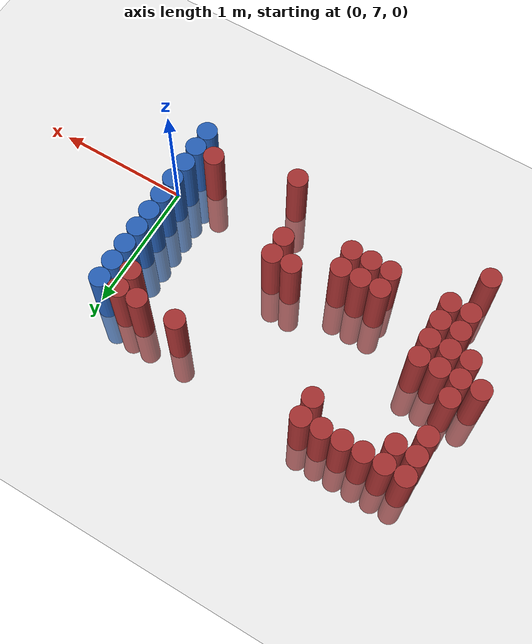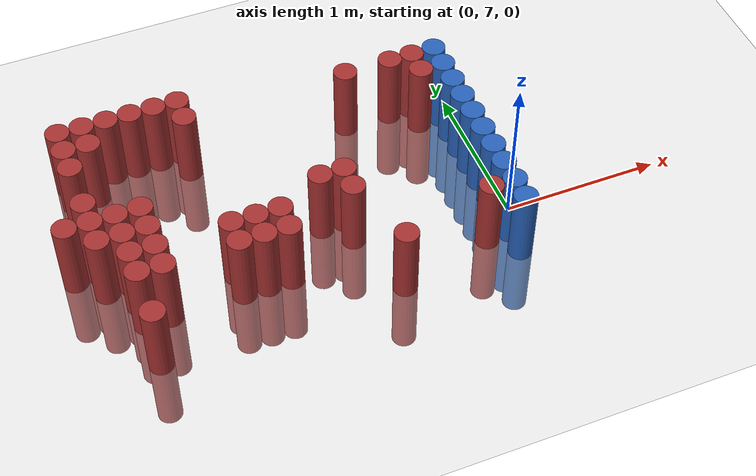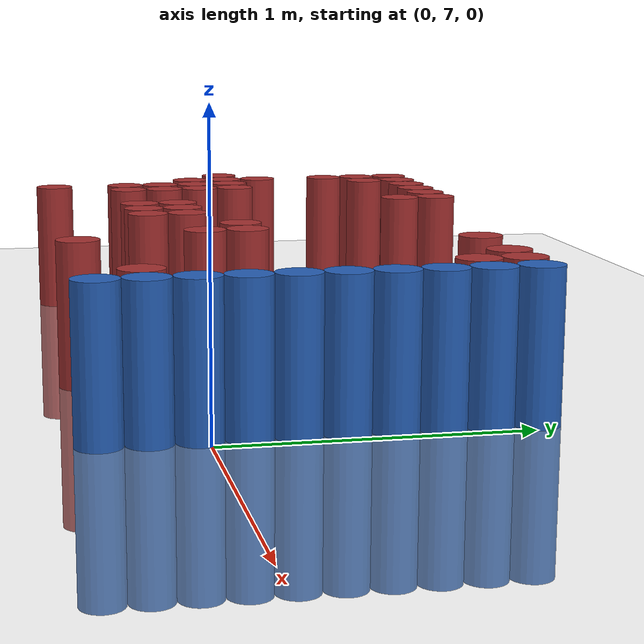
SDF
<sdf version="1.6">
 <world name="default">
  <model name="ground_plane">
   <static>1</static>
   <link name="link">
    <collision name="collision">
     <geometry><plane><normal>0 0 1</normal><size>100 100</size></plane></geometry>
     <surface><friction><ode><mu>100</mu><mu2>50</mu2></ode></friction></surface>
    </collision>
    <visual name="visual">
     <cast_shadows>0</cast_shadows>
     <geometry><plane><normal>0 0 1</normal><size>100 100</size></plane></geometry>
     <material>
      <script><uri>file://media/materials/scripts/gazebo.material</uri><name>Gazebo/Grey</name></script>
     </material>
    </visual>
   </link>
  </model>
  <model name="unit_cylinder_169">
   <static>1</static>
   <pose>-2.625000 7.425000 0.000000 0.000000 0.000000 0.000000</pose>
   <link name="link">
    <inertial>
     <mass>1</mass>
     <inertia><ixx>0.145833</ixx><ixy>0</ixy><ixz>0</ixz><iyy>0.145833</iyy><iyz>0</iyz><izz>0.125</izz></inertia>
    </inertial>
    <collision name="collision">
     <geometry><cylinder><radius>0.075000</radius><length>1</length></cylinder></geometry>
    </collision>
    <visual name="visual">
     <geometry><cylinder><radius>0.075000</radius><length>1</length></cylinder></geometry>
     <material>
      <ambient>0.648000 0.192000 0.192000 1</ambient>
      <diffuse>0.648000 0.192000 0.192000 1</diffuse>
     </material>
     <material>
      <script><name>Gazebo/Grey</name><uri>file://media/materials/scripts/gazebo.material</uri></script>
     </material>
    </visual>
   </link>
  </model>
  <model name="unit_cylinder_170">
   <static>1</static>
   <pose>-2.475000 7.275000 0.000000 0.000000 0.000000 0.000000</pose>
   <link name="link">
    <inertial>
     <mass>1</mass>
     <inertia><ixx>0.145833</ixx><ixy>0</ixy><ixz>0</ixz><iyy>0.145833</iyy><iyz>0</iyz><izz>0.125</izz></inertia>
    </inertial>
    <collision name="collision">
     <geometry><cylinder><radius>0.075000</radius><length>1</length></cylinder></geometry>
    </collision>
    <visual name="visual">
     <geometry><cylinder><radius>0.075000</radius><length>1</length></cylinder></geometry>
     <material>
      <ambient>0.648000 0.192000 0.192000 1</ambient>
      <diffuse>0.648000 0.192000 0.192000 1</diffuse>
     </material>
     <material>
      <script><name>Gazebo/Grey</name><uri>file://media/materials/scripts/gazebo.material</uri></script>
     </material>
    </visual>
   </link>
  </model>
  <model name="unit_cylinder_171">
   <static>1</static>
   <pose>-2.475000 7.425000 0.000000 0.000000 0.000000 0.000000</pose>
   <link name="link">
    <inertial>
     <mass>1</mass>
     <inertia><ixx>0.145833</ixx><ixy>0</ixy><ixz>0</ixz><iyy>0.145833</iyy><iyz>0</iyz><izz>0.125</izz></inertia>
    </inertial>
    <collision name="collision">
     <geometry><cylinder><radius>0.075000</radius><length>1</length></cylinder></geometry>
    </collision>
    <visual name="visual">
     <geometry><cylinder><radius>0.075000</radius><length>1</length></cylinder></geometry>
     <material>
      <ambient>0.648000 0.192000 0.192000 1</ambient>
      <diffuse>0.648000 0.192000 0.192000 1</diffuse>
     </material>
     <material>
      <script><name>Gazebo/Grey</name><uri>file://media/materials/scripts/gazebo.material</uri></script>
     </material>
    </visual>
   </link>
  </model>
  <model name="unit_cylinder_172">
   <static>1</static>
   <pose>-2.475000 7.575000 0.000000 0.000000 0.000000 0.000000</pose>
   <link name="link">
    <inertial>
     <mass>1</mass>
     <inertia><ixx>0.145833</ixx><ixy>0</ixy><ixz>0</ixz><iyy>0.145833</iyy><iyz>0</iyz><izz>0.125</izz></inertia>
    </inertial>
    <collision name="collision">
     <geometry><cylinder><radius>0.075000</radius><length>1</length></cylinder></geometry>
    </collision>
    <visual name="visual">
     <geometry><cylinder><radius>0.075000</radius><length>1</length></cylinder></geometry>
     <material>
      <ambient>0.648000 0.192000 0.192000 1</ambient>
      <diffuse>0.648000 0.192000 0.192000 1</diffuse>
     </material>
     <material>
      <script><name>Gazebo/Grey</name><uri>file://media/materials/scripts/gazebo.material</uri></script>
     </material>
    </visual>
   </link>
  </model>
  <model name="unit_cylinder_173">
   <static>1</static>
   <pose>-2.475000 7.875000 0.000000 0.000000 0.000000 0.000000</pose>
   <link name="link">
    <inertial>
     <mass>1</mass>
     <inertia><ixx>0.145833</ixx><ixy>0</ixy><ixz>0</ixz><iyy>0.145833</iyy><iyz>0</iyz><izz>0.125</izz></inertia>
    </inertial>
    <collision name="collision">
     <geometry><cylinder><radius>0.075000</radius><length>1</length></cylinder></geometry>
    </collision>
    <visual name="visual">
     <geometry><cylinder><radius>0.075000</radius><length>1</length></cylinder></geometry>
     <material>
      <ambient>0.648000 0.192000 0.192000 1</ambient>
      <diffuse>0.648000 0.192000 0.192000 1</diffuse>
     </material>
     <material>
      <script><name>Gazebo/Grey</name><uri>file://media/materials/scripts/gazebo.material</uri></script>
     </material>
    </visual>
   </link>
  </model>
  <model name="unit_cylinder_174">
   <static>1</static>
   <pose>-2.475000 8.025000 0.000000 0.000000 0.000000 0.000000</pose>
   <link name="link">
    <inertial>
     <mass>1</mass>
     <inertia><ixx>0.145833</ixx><ixy>0</ixy><ixz>0</ixz><iyy>0.145833</iyy><iyz>0</iyz><izz>0.125</izz></inertia>
    </inertial>
    <collision name="collision">
     <geometry><cylinder><radius>0.075000</radius><length>1</length></cylinder></geometry>
    </collision>
    <visual name="visual">
     <geometry><cylinder><radius>0.075000</radius><length>1</length></cylinder></geometry>
     <material>
      <ambient>0.648000 0.192000 0.192000 1</ambient>
      <diffuse>0.648000 0.192000 0.192000 1</diffuse>
     </material>
     <material>
      <script><name>Gazebo/Grey</name><uri>file://media/materials/scripts/gazebo.material</uri></script>
     </material>
    </visual>
   </link>
  </model>
  <model name="unit_cylinder_175">
   <static>1</static>
   <pose>-2.475000 8.175000 0.000000 0.000000 0.000000 0.000000</pose>
   <link name="link">
    <inertial>
     <mass>1</mass>
     <inertia><ixx>0.145833</ixx><ixy>0</ixy><ixz>0</ixz><iyy>0.145833</iyy><iyz>0</iyz><izz>0.125</izz></inertia>
    </inertial>
    <collision name="collision">
     <geometry><cylinder><radius>0.075000</radius><length>1</length></cylinder></geometry>
    </collision>
    <visual name="visual">
     <geometry><cylinder><radius>0.075000</radius><length>1</length></cylinder></geometry>
     <material>
      <ambient>0.648000 0.192000 0.192000 1</ambient>
      <diffuse>0.648000 0.192000 0.192000 1</diffuse>
     </material>
     <material>
      <script><name>Gazebo/Grey</name><uri>file://media/materials/scripts/gazebo.material</uri></script>
     </material>
    </visual>
   </link>
  </model>
  <model name="unit_cylinder_178">
   <static>1</static>
   <pose>-2.325000 6.675000 0.000000 0.000000 0.000000 0.000000</pose>
   <link name="link">
    <inertial>
     <mass>1</mass>
     <inertia><ixx>0.145833</ixx><ixy>0</ixy><ixz>0</ixz><iyy>0.145833</iyy><iyz>0</iyz><izz>0.125</izz></inertia>
    </inertial>
    <collision name="collision">
     <geometry><cylinder><radius>0.075000</radius><length>1</length></cylinder></geometry>
    </collision>
    <visual name="visual">
     <geometry><cylinder><radius>0.075000</radius><length>1</length></cylinder></geometry>
     <material>
      <ambient>0.648000 0.192000 0.192000 1</ambient>
      <diffuse>0.648000 0.192000 0.192000 1</diffuse>
     </material>
     <material>
      <script><name>Gazebo/Grey</name><uri>file://media/materials/scripts/gazebo.material</uri></script>
     </material>
    </visual>
   </link>
  </model>
  <model name="unit_cylinder_179">
   <static>1</static>
   <pose>-2.325000 6.975000 0.000000 0.000000 0.000000 0.000000</pose>
   <link name="link">
    <inertial>
     <mass>1</mass>
     <inertia><ixx>0.145833</ixx><ixy>0</ixy><ixz>0</ixz><iyy>0.145833</iyy><iyz>0</iyz><izz>0.125</izz></inertia>
    </inertial>
    <collision name="collision">
     <geometry><cylinder><radius>0.075000</radius><length>1</length></cylinder></geometry>
    </collision>
    <visual name="visual">
     <geometry><cylinder><radius>0.075000</radius><length>1</length></cylinder></geometry>
     <material>
      <ambient>0.648000 0.192000 0.192000 1</ambient>
      <diffuse>0.648000 0.192000 0.192000 1</diffuse>
     </material>
     <material>
      <script><name>Gazebo/Grey</name><uri>file://media/materials/scripts/gazebo.material</uri></script>
     </material>
    </visual>
   </link>
  </model>
  <model name="unit_cylinder_180">
   <static>1</static>
   <pose>-2.325000 7.125000 0.000000 0.000000 0.000000 0.000000</pose>
   <link name="link">
    <inertial>
     <mass>1</mass>
     <inertia><ixx>0.145833</ixx><ixy>0</ixy><ixz>0</ixz><iyy>0.145833</iyy><iyz>0</iyz><izz>0.125</izz></inertia>
    </inertial>
    <collision name="collision">
     <geometry><cylinder><radius>0.075000</radius><length>1</length></cylinder></geometry>
    </collision>
    <visual name="visual">
     <geometry><cylinder><radius>0.075000</radius><length>1</length></cylinder></geometry>
     <material>
      <ambient>0.648000 0.192000 0.192000 1</ambient>
      <diffuse>0.648000 0.192000 0.192000 1</diffuse>
     </material>
     <material>
      <script><name>Gazebo/Grey</name><uri>file://media/materials/scripts/gazebo.material</uri></script>
     </material>
    </visual>
   </link>
  </model>
  <model name="unit_cylinder_181">
   <static>1</static>
   <pose>-2.325000 7.275000 0.000000 0.000000 0.000000 0.000000</pose>
   <link name="link">
    <inertial>
     <mass>1</mass>
     <inertia><ixx>0.145833</ixx><ixy>0</ixy><ixz>0</ixz><iyy>0.145833</iyy><iyz>0</iyz><izz>0.125</izz></inertia>
    </inertial>
    <collision name="collision">
     <geometry><cylinder><radius>0.075000</radius><length>1</length></cylinder></geometry>
    </collision>
    <visual name="visual">
     <geometry><cylinder><radius>0.075000</radius><length>1</length></cylinder></geometry>
     <material>
      <ambient>0.648000 0.192000 0.192000 1</ambient>
      <diffuse>0.648000 0.192000 0.192000 1</diffuse>
     </material>
     <material>
      <script><name>Gazebo/Grey</name><uri>file://media/materials/scripts/gazebo.material</uri></script>
     </material>
    </visual>
   </link>
  </model>
  <model name="unit_cylinder_182">
   <static>1</static>
   <pose>-2.325000 7.425000 0.000000 0.000000 0.000000 0.000000</pose>
   <link name="link">
    <inertial>
     <mass>1</mass>
     <inertia><ixx>0.145833</ixx><ixy>0</ixy><ixz>0</ixz><iyy>0.145833</iyy><iyz>0</iyz><izz>0.125</izz></inertia>
    </inertial>
    <collision name="collision">
     <geometry><cylinder><radius>0.075000</radius><length>1</length></cylinder></geometry>
    </collision>
    <visual name="visual">
     <geometry><cylinder><radius>0.075000</radius><length>1</length></cylinder></geometry>
     <material>
      <ambient>0.648000 0.192000 0.192000 1</ambient>
      <diffuse>0.648000 0.192000 0.192000 1</diffuse>
     </material>
     <material>
      <script><name>Gazebo/Grey</name><uri>file://media/materials/scripts/gazebo.material</uri></script>
     </material>
    </visual>
   </link>
  </model>
  <model name="unit_cylinder_183">
   <static>1</static>
   <pose>-2.325000 8.025000 0.000000 0.000000 0.000000 0.000000</pose>
   <link name="link">
    <inertial>
     <mass>1</mass>
     <inertia><ixx>0.145833</ixx><ixy>0</ixy><ixz>0</ixz><iyy>0.145833</iyy><iyz>0</iyz><izz>0.125</izz></inertia>
    </inertial>
    <collision name="collision">
     <geometry><cylinder><radius>0.075000</radius><length>1</length></cylinder></geometry>
    </collision>
    <visual name="visual">
     <geometry><cylinder><radius>0.075000</radius><length>1</length></cylinder></geometry>
     <material>
      <ambient>0.648000 0.192000 0.192000 1</ambient>
      <diffuse>0.648000 0.192000 0.192000 1</diffuse>
     </material>
     <material>
      <script><name>Gazebo/Grey</name><uri>file://media/materials/scripts/gazebo.material</uri></script>
     </material>
    </visual>
   </link>
  </model>
  <model name="unit_cylinder_184">
   <static>1</static>
   <pose>-2.325000 8.175000 0.000000 0.000000 0.000000 0.000000</pose>
   <link name="link">
    <inertial>
     <mass>1</mass>
     <inertia><ixx>0.145833</ixx><ixy>0</ixy><ixz>0</ixz><iyy>0.145833</iyy><iyz>0</iyz><izz>0.125</izz></inertia>
    </inertial>
    <collision name="collision">
     <geometry><cylinder><radius>0.075000</radius><length>1</length></cylinder></geometry>
    </collision>
    <visual name="visual">
     <geometry><cylinder><radius>0.075000</radius><length>1</length></cylinder></geometry>
     <material>
      <ambient>0.648000 0.192000 0.192000 1</ambient>
      <diffuse>0.648000 0.192000 0.192000 1</diffuse>
     </material>
     <material>
      <script><name>Gazebo/Grey</name><uri>file://media/materials/scripts/gazebo.material</uri></script>
     </material>
    </visual>
   </link>
  </model>
  <model name="unit_cylinder_189">
   <static>1</static>
   <pose>-2.175000 6.975000 0.000000 0.000000 0.000000 0.000000</pose>
   <link name="link">
    <inertial>
     <mass>1</mass>
     <inertia><ixx>0.145833</ixx><ixy>0</ixy><ixz>0</ixz><iyy>0.145833</iyy><iyz>0</iyz><izz>0.125</izz></inertia>
    </inertial>
    <collision name="collision">
     <geometry><cylinder><radius>0.075000</radius><length>1</length></cylinder></geometry>
    </collision>
    <visual name="visual">
     <geometry><cylinder><radius>0.075000</radius><length>1</length></cylinder></geometry>
     <material>
      <ambient>0.648000 0.192000 0.192000 1</ambient>
      <diffuse>0.648000 0.192000 0.192000 1</diffuse>
     </material>
     <material>
      <script><name>Gazebo/Grey</name><uri>file://media/materials/scripts/gazebo.material</uri></script>
     </material>
    </visual>
   </link>
  </model>
  <model name="unit_cylinder_190">
   <static>1</static>
   <pose>-2.175000 7.125000 0.000000 0.000000 0.000000 0.000000</pose>
   <link name="link">
    <inertial>
     <mass>1</mass>
     <inertia><ixx>0.145833</ixx><ixy>0</ixy><ixz>0</ixz><iyy>0.145833</iyy><iyz>0</iyz><izz>0.125</izz></inertia>
    </inertial>
    <collision name="collision">
     <geometry><cylinder><radius>0.075000</radius><length>1</length></cylinder></geometry>
    </collision>
    <visual name="visual">
     <geometry><cylinder><radius>0.075000</radius><length>1</length></cylinder></geometry>
     <material>
      <ambient>0.648000 0.192000 0.192000 1</ambient>
      <diffuse>0.648000 0.192000 0.192000 1</diffuse>
     </material>
     <material>
      <script><name>Gazebo/Grey</name><uri>file://media/materials/scripts/gazebo.material</uri></script>
     </material>
    </visual>
   </link>
  </model>
  <model name="unit_cylinder_191">
   <static>1</static>
   <pose>-2.175000 7.275000 0.000000 0.000000 0.000000 0.000000</pose>
   <link name="link">
    <inertial>
     <mass>1</mass>
     <inertia><ixx>0.145833</ixx><ixy>0</ixy><ixz>0</ixz><iyy>0.145833</iyy><iyz>0</iyz><izz>0.125</izz></inertia>
    </inertial>
    <collision name="collision">
     <geometry><cylinder><radius>0.075000</radius><length>1</length></cylinder></geometry>
    </collision>
    <visual name="visual">
     <geometry><cylinder><radius>0.075000</radius><length>1</length></cylinder></geometry>
     <material>
      <ambient>0.648000 0.192000 0.192000 1</ambient>
      <diffuse>0.648000 0.192000 0.192000 1</diffuse>
     </material>
     <material>
      <script><name>Gazebo/Grey</name><uri>file://media/materials/scripts/gazebo.material</uri></script>
     </material>
    </visual>
   </link>
  </model>
  <model name="unit_cylinder_192">
   <static>1</static>
   <pose>-2.175000 7.425000 0.000000 0.000000 0.000000 0.000000</pose>
   <link name="link">
    <inertial>
     <mass>1</mass>
     <inertia><ixx>0.145833</ixx><ixy>0</ixy><ixz>0</ixz><iyy>0.145833</iyy><iyz>0</iyz><izz>0.125</izz></inertia>
    </inertial>
    <collision name="collision">
     <geometry><cylinder><radius>0.075000</radius><length>1</length></cylinder></geometry>
    </collision>
    <visual name="visual">
     <geometry><cylinder><radius>0.075000</radius><length>1</length></cylinder></geometry>
     <material>
      <ambient>0.648000 0.192000 0.192000 1</ambient>
      <diffuse>0.648000 0.192000 0.192000 1</diffuse>
     </material>
     <material>
      <script><name>Gazebo/Grey</name><uri>file://media/materials/scripts/gazebo.material</uri></script>
     </material>
    </visual>
   </link>
  </model>
  <model name="unit_cylinder_193">
   <static>1</static>
   <pose>-2.175000 8.175000 0.000000 0.000000 0.000000 0.000000</pose>
   <link name="link">
    <inertial>
     <mass>1</mass>
     <inertia><ixx>0.145833</ixx><ixy>0</ixy><ixz>0</ixz><iyy>0.145833</iyy><iyz>0</iyz><izz>0.125</izz></inertia>
    </inertial>
    <collision name="collision">
     <geometry><cylinder><radius>0.075000</radius><length>1</length></cylinder></geometry>
    </collision>
    <visual name="visual">
     <geometry><cylinder><radius>0.075000</radius><length>1</length></cylinder></geometry>
     <material>
      <ambient>0.648000 0.192000 0.192000 1</ambient>
      <diffuse>0.648000 0.192000 0.192000 1</diffuse>
     </material>
     <material>
      <script><name>Gazebo/Grey</name><uri>file://media/materials/scripts/gazebo.material</uri></script>
     </material>
    </visual>
   </link>
  </model>
  <model name="unit_cylinder_198">
   <static>1</static>
   <pose>-2.025000 8.175000 0.000000 0.000000 0.000000 0.000000</pose>
   <link name="link">
    <inertial>
     <mass>1</mass>
     <inertia><ixx>0.145833</ixx><ixy>0</ixy><ixz>0</ixz><iyy>0.145833</iyy><iyz>0</iyz><izz>0.125</izz></inertia>
    </inertial>
    <collision name="collision">
     <geometry><cylinder><radius>0.075000</radius><length>1</length></cylinder></geometry>
    </collision>
    <visual name="visual">
     <geometry><cylinder><radius>0.075000</radius><length>1</length></cylinder></geometry>
     <material>
      <ambient>0.648000 0.192000 0.192000 1</ambient>
      <diffuse>0.648000 0.192000 0.192000 1</diffuse>
     </material>
     <material>
      <script><name>Gazebo/Grey</name><uri>file://media/materials/scripts/gazebo.material</uri></script>
     </material>
    </visual>
   </link>
  </model>
  <model name="unit_cylinder_200">
   <static>1</static>
   <pose>-1.875000 8.175000 0.000000 0.000000 0.000000 0.000000</pose>
   <link name="link">
    <inertial>
     <mass>1</mass>
     <inertia><ixx>0.145833</ixx><ixy>0</ixy><ixz>0</ixz><iyy>0.145833</iyy><iyz>0</iyz><izz>0.125</izz></inertia>
    </inertial>
    <collision name="collision">
     <geometry><cylinder><radius>0.075000</radius><length>1</length></cylinder></geometry>
    </collision>
    <visual name="visual">
     <geometry><cylinder><radius>0.075000</radius><length>1</length></cylinder></geometry>
     <material>
      <ambient>0.648000 0.192000 0.192000 1</ambient>
      <diffuse>0.648000 0.192000 0.192000 1</diffuse>
     </material>
     <material>
      <script><name>Gazebo/Grey</name><uri>file://media/materials/scripts/gazebo.material</uri></script>
     </material>
    </visual>
   </link>
  </model>
  <model name="unit_cylinder_203">
   <static>1</static>
   <pose>-1.725000 6.975000 0.000000 0.000000 0.000000 0.000000</pose>
   <link name="link">
    <inertial>
     <mass>1</mass>
     <inertia><ixx>0.145833</ixx><ixy>0</ixy><ixz>0</ixz><iyy>0.145833</iyy><iyz>0</iyz><izz>0.125</izz></inertia>
    </inertial>
    <collision name="collision">
     <geometry><cylinder><radius>0.075000</radius><length>1</length></cylinder></geometry>
    </collision>
    <visual name="visual">
     <geometry><cylinder><radius>0.075000</radius><length>1</length></cylinder></geometry>
     <material>
      <ambient>0.648000 0.192000 0.192000 1</ambient>
      <diffuse>0.648000 0.192000 0.192000 1</diffuse>
     </material>
     <material>
      <script><name>Gazebo/Grey</name><uri>file://media/materials/scripts/gazebo.material</uri></script>
     </material>
    </visual>
   </link>
  </model>
  <model name="unit_cylinder_204">
   <static>1</static>
   <pose>-1.725000 7.125000 0.000000 0.000000 0.000000 0.000000</pose>
   <link name="link">
    <inertial>
     <mass>1</mass>
     <inertia><ixx>0.145833</ixx><ixy>0</ixy><ixz>0</ixz><iyy>0.145833</iyy><iyz>0</iyz><izz>0.125</izz></inertia>
    </inertial>
    <collision name="collision">
     <geometry><cylinder><radius>0.075000</radius><length>1</length></cylinder></geometry>
    </collision>
    <visual name="visual">
     <geometry><cylinder><radius>0.075000</radius><length>1</length></cylinder></geometry>
     <material>
      <ambient>0.648000 0.192000 0.192000 1</ambient>
      <diffuse>0.648000 0.192000 0.192000 1</diffuse>
     </material>
     <material>
      <script><name>Gazebo/Grey</name><uri>file://media/materials/scripts/gazebo.material</uri></script>
     </material>
    </visual>
   </link>
  </model>
  <model name="unit_cylinder_205">
   <static>1</static>
   <pose>-1.725000 8.025000 0.000000 0.000000 0.000000 0.000000</pose>
   <link name="link">
    <inertial>
     <mass>1</mass>
     <inertia><ixx>0.145833</ixx><ixy>0</ixy><ixz>0</ixz><iyy>0.145833</iyy><iyz>0</iyz><izz>0.125</izz></inertia>
    </inertial>
    <collision name="collision">
     <geometry><cylinder><radius>0.075000</radius><length>1</length></cylinder></geometry>
    </collision>
    <visual name="visual">
     <geometry><cylinder><radius>0.075000</radius><length>1</length></cylinder></geometry>
     <material>
      <ambient>0.648000 0.192000 0.192000 1</ambient>
      <diffuse>0.648000 0.192000 0.192000 1</diffuse>
     </material>
     <material>
      <script><name>Gazebo/Grey</name><uri>file://media/materials/scripts/gazebo.material</uri></script>
     </material>
    </visual>
   </link>
  </model>
  <model name="unit_cylinder_206">
   <static>1</static>
   <pose>-1.725000 8.175000 0.000000 0.000000 0.000000 0.000000</pose>
   <link name="link">
    <inertial>
     <mass>1</mass>
     <inertia><ixx>0.145833</ixx><ixy>0</ixy><ixz>0</ixz><iyy>0.145833</iyy><iyz>0</iyz><izz>0.125</izz></inertia>
    </inertial>
    <collision name="collision">
     <geometry><cylinder><radius>0.075000</radius><length>1</length></cylinder></geometry>
    </collision>
    <visual name="visual">
     <geometry><cylinder><radius>0.075000</radius><length>1</length></cylinder></geometry>
     <material>
      <ambient>0.648000 0.192000 0.192000 1</ambient>
      <diffuse>0.648000 0.192000 0.192000 1</diffuse>
     </material>
     <material>
      <script><name>Gazebo/Grey</name><uri>file://media/materials/scripts/gazebo.material</uri></script>
     </material>
    </visual>
   </link>
  </model>
  <model name="unit_cylinder_211">
   <static>1</static>
   <pose>-1.575000 6.975000 0.000000 0.000000 0.000000 0.000000</pose>
   <link name="link">
    <inertial>
     <mass>1</mass>
     <inertia><ixx>0.145833</ixx><ixy>0</ixy><ixz>0</ixz><iyy>0.145833</iyy><iyz>0</iyz><izz>0.125</izz></inertia>
    </inertial>
    <collision name="collision">
     <geometry><cylinder><radius>0.075000</radius><length>1</length></cylinder></geometry>
    </collision>
    <visual name="visual">
     <geometry><cylinder><radius>0.075000</radius><length>1</length></cylinder></geometry>
     <material>
      <ambient>0.648000 0.192000 0.192000 1</ambient>
      <diffuse>0.648000 0.192000 0.192000 1</diffuse>
     </material>
     <material>
      <script><name>Gazebo/Grey</name><uri>file://media/materials/scripts/gazebo.material</uri></script>
     </material>
    </visual>
   </link>
  </model>
  <model name="unit_cylinder_212">
   <static>1</static>
   <pose>-1.575000 7.125000 0.000000 0.000000 0.000000 0.000000</pose>
   <link name="link">
    <inertial>
     <mass>1</mass>
     <inertia><ixx>0.145833</ixx><ixy>0</ixy><ixz>0</ixz><iyy>0.145833</iyy><iyz>0</iyz><izz>0.125</izz></inertia>
    </inertial>
    <collision name="collision">
     <geometry><cylinder><radius>0.075000</radius><length>1</length></cylinder></geometry>
    </collision>
    <visual name="visual">
     <geometry><cylinder><radius>0.075000</radius><length>1</length></cylinder></geometry>
     <material>
      <ambient>0.648000 0.192000 0.192000 1</ambient>
      <diffuse>0.648000 0.192000 0.192000 1</diffuse>
     </material>
     <material>
      <script><name>Gazebo/Grey</name><uri>file://media/materials/scripts/gazebo.material</uri></script>
     </material>
    </visual>
   </link>
  </model>
  <model name="unit_cylinder_219">
   <static>1</static>
   <pose>-1.425000 6.975000 0.000000 0.000000 0.000000 0.000000</pose>
   <link name="link">
    <inertial>
     <mass>1</mass>
     <inertia><ixx>0.145833</ixx><ixy>0</ixy><ixz>0</ixz><iyy>0.145833</iyy><iyz>0</iyz><izz>0.125</izz></inertia>
    </inertial>
    <collision name="collision">
     <geometry><cylinder><radius>0.075000</radius><length>1</length></cylinder></geometry>
    </collision>
    <visual name="visual">
     <geometry><cylinder><radius>0.075000</radius><length>1</length></cylinder></geometry>
     <material>
      <ambient>0.648000 0.192000 0.192000 1</ambient>
      <diffuse>0.648000 0.192000 0.192000 1</diffuse>
     </material>
     <material>
      <script><name>Gazebo/Grey</name><uri>file://media/materials/scripts/gazebo.material</uri></script>
     </material>
    </visual>
   </link>
  </model>
  <model name="unit_cylinder_220">
   <static>1</static>
   <pose>-1.425000 7.125000 0.000000 0.000000 0.000000 0.000000</pose>
   <link name="link">
    <inertial>
     <mass>1</mass>
     <inertia><ixx>0.145833</ixx><ixy>0</ixy><ixz>0</ixz><iyy>0.145833</iyy><iyz>0</iyz><izz>0.125</izz></inertia>
    </inertial>
    <collision name="collision">
     <geometry><cylinder><radius>0.075000</radius><length>1</length></cylinder></geometry>
    </collision>
    <visual name="visual">
     <geometry><cylinder><radius>0.075000</radius><length>1</length></cylinder></geometry>
     <material>
      <ambient>0.648000 0.192000 0.192000 1</ambient>
      <diffuse>0.648000 0.192000 0.192000 1</diffuse>
     </material>
     <material>
      <script><name>Gazebo/Grey</name><uri>file://media/materials/scripts/gazebo.material</uri></script>
     </material>
    </visual>
   </link>
  </model>
  <model name="unit_cylinder_227">
   <static>1</static>
   <pose>-1.125000 7.275000 0.000000 0.000000 0.000000 0.000000</pose>
   <link name="link">
    <inertial>
     <mass>1</mass>
     <inertia><ixx>0.145833</ixx><ixy>0</ixy><ixz>0</ixz><iyy>0.145833</iyy><iyz>0</iyz><izz>0.125</izz></inertia>
    </inertial>
    <collision name="collision">
     <geometry><cylinder><radius>0.075000</radius><length>1</length></cylinder></geometry>
    </collision>
    <visual name="visual">
     <geometry><cylinder><radius>0.075000</radius><length>1</length></cylinder></geometry>
     <material>
      <ambient>0.648000 0.192000 0.192000 1</ambient>
      <diffuse>0.648000 0.192000 0.192000 1</diffuse>
     </material>
     <material>
      <script><name>Gazebo/Grey</name><uri>file://media/materials/scripts/gazebo.material</uri></script>
     </material>
    </visual>
   </link>
  </model>
  <model name="unit_cylinder_234">
   <static>1</static>
   <pose>-0.975000 7.125000 0.000000 0.000000 0.000000 0.000000</pose>
   <link name="link">
    <inertial>
     <mass>1</mass>
     <inertia><ixx>0.145833</ixx><ixy>0</ixy><ixz>0</ixz><iyy>0.145833</iyy><iyz>0</iyz><izz>0.125</izz></inertia>
    </inertial>
    <collision name="collision">
     <geometry><cylinder><radius>0.075000</radius><length>1</length></cylinder></geometry>
    </collision>
    <visual name="visual">
     <geometry><cylinder><radius>0.075000</radius><length>1</length></cylinder></geometry>
     <material>
      <ambient>0.648000 0.192000 0.192000 1</ambient>
      <diffuse>0.648000 0.192000 0.192000 1</diffuse>
     </material>
     <material>
      <script><name>Gazebo/Grey</name><uri>file://media/materials/scripts/gazebo.material</uri></script>
     </material>
    </visual>
   </link>
  </model>
  <model name="unit_cylinder_235">
   <static>1</static>
   <pose>-0.975000 7.275000 0.000000 0.000000 0.000000 0.000000</pose>
   <link name="link">
    <inertial>
     <mass>1</mass>
     <inertia><ixx>0.145833</ixx><ixy>0</ixy><ixz>0</ixz><iyy>0.145833</iyy><iyz>0</iyz><izz>0.125</izz></inertia>
    </inertial>
    <collision name="collision">
     <geometry><cylinder><radius>0.075000</radius><length>1</length></cylinder></geometry>
    </collision>
    <visual name="visual">
     <geometry><cylinder><radius>0.075000</radius><length>1</length></cylinder></geometry>
     <material>
      <ambient>0.648000 0.192000 0.192000 1</ambient>
      <diffuse>0.648000 0.192000 0.192000 1</diffuse>
     </material>
     <material>
      <script><name>Gazebo/Grey</name><uri>file://media/materials/scripts/gazebo.material</uri></script>
     </material>
    </visual>
   </link>
  </model>
  <model name="unit_cylinder_240">
   <static>1</static>
   <pose>-0.825000 6.675000 0.000000 0.000000 0.000000 0.000000</pose>
   <link name="link">
    <inertial>
     <mass>1</mass>
     <inertia><ixx>0.145833</ixx><ixy>0</ixy><ixz>0</ixz><iyy>0.145833</iyy><iyz>0</iyz><izz>0.125</izz></inertia>
    </inertial>
    <collision name="collision">
     <geometry><cylinder><radius>0.075000</radius><length>1</length></cylinder></geometry>
    </collision>
    <visual name="visual">
     <geometry><cylinder><radius>0.075000</radius><length>1</length></cylinder></geometry>
     <material>
      <ambient>0.648000 0.192000 0.192000 1</ambient>
      <diffuse>0.648000 0.192000 0.192000 1</diffuse>
     </material>
     <material>
      <script><name>Gazebo/Grey</name><uri>file://media/materials/scripts/gazebo.material</uri></script>
     </material>
    </visual>
   </link>
  </model>
  <model name="unit_cylinder_242">
   <static>1</static>
   <pose>-0.675000 8.025000 0.000000 0.000000 0.000000 0.000000</pose>
   <link name="link">
    <inertial>
     <mass>1</mass>
     <inertia><ixx>0.145833</ixx><ixy>0</ixy><ixz>0</ixz><iyy>0.145833</iyy><iyz>0</iyz><izz>0.125</izz></inertia>
    </inertial>
    <collision name="collision">
     <geometry><cylinder><radius>0.075000</radius><length>1</length></cylinder></geometry>
    </collision>
    <visual name="visual">
     <geometry><cylinder><radius>0.075000</radius><length>1</length></cylinder></geometry>
     <material>
      <ambient>0.648000 0.192000 0.192000 1</ambient>
      <diffuse>0.648000 0.192000 0.192000 1</diffuse>
     </material>
     <material>
      <script><name>Gazebo/Grey</name><uri>file://media/materials/scripts/gazebo.material</uri></script>
     </material>
    </visual>
   </link>
  </model>
  <model name="unit_cylinder_246">
   <static>1</static>
   <pose>-0.375000 8.025000 0.000000 0.000000 0.000000 0.000000</pose>
   <link name="link">
    <inertial>
     <mass>1</mass>
     <inertia><ixx>0.145833</ixx><ixy>0</ixy><ixz>0</ixz><iyy>0.145833</iyy><iyz>0</iyz><izz>0.125</izz></inertia>
    </inertial>
    <collision name="collision">
     <geometry><cylinder><radius>0.075000</radius><length>1</length></cylinder></geometry>
    </collision>
    <visual name="visual">
     <geometry><cylinder><radius>0.075000</radius><length>1</length></cylinder></geometry>
     <material>
      <ambient>0.648000 0.192000 0.192000 1</ambient>
      <diffuse>0.648000 0.192000 0.192000 1</diffuse>
     </material>
     <material>
      <script><name>Gazebo/Grey</name><uri>file://media/materials/scripts/gazebo.material</uri></script>
     </material>
    </visual>
   </link>
  </model>
  <model name="unit_cylinder_252">
   <static>1</static>
   <pose>-0.225000 6.825000 0.000000 0.000000 0.000000 0.000000</pose>
   <link name="link">
    <inertial>
     <mass>1</mass>
     <inertia><ixx>0.145833</ixx><ixy>0</ixy><ixz>0</ixz><iyy>0.145833</iyy><iyz>0</iyz><izz>0.125</izz></inertia>
    </inertial>
    <collision name="collision">
     <geometry><cylinder><radius>0.075000</radius><length>1</length></cylinder></geometry>
    </collision>
    <visual name="visual">
     <geometry><cylinder><radius>0.075000</radius><length>1</length></cylinder></geometry>
     <material>
      <ambient>0.648000 0.192000 0.192000 1</ambient>
      <diffuse>0.648000 0.192000 0.192000 1</diffuse>
     </material>
     <material>
      <script><name>Gazebo/Grey</name><uri>file://media/materials/scripts/gazebo.material</uri></script>
     </material>
    </visual>
   </link>
  </model>
  <model name="unit_cylinder_253">
   <static>1</static>
   <pose>-0.225000 7.875000 0.000000 0.000000 0.000000 0.000000</pose>
   <link name="link">
    <inertial>
     <mass>1</mass>
     <inertia><ixx>0.145833</ixx><ixy>0</ixy><ixz>0</ixz><iyy>0.145833</iyy><iyz>0</iyz><izz>0.125</izz></inertia>
    </inertial>
    <collision name="collision">
     <geometry><cylinder><radius>0.075000</radius><length>1</length></cylinder></geometry>
    </collision>
    <visual name="visual">
     <geometry><cylinder><radius>0.075000</radius><length>1</length></cylinder></geometry>
     <material>
      <ambient>0.648000 0.192000 0.192000 1</ambient>
      <diffuse>0.648000 0.192000 0.192000 1</diffuse>
     </material>
     <material>
      <script><name>Gazebo/Grey</name><uri>file://media/materials/scripts/gazebo.material</uri></script>
     </material>
    </visual>
   </link>
  </model>
  <model name="unit_cylinder_254">
   <static>1</static>
   <pose>-0.225000 8.025000 0.000000 0.000000 0.000000 0.000000</pose>
   <link name="link">
    <inertial>
     <mass>1</mass>
     <inertia><ixx>0.145833</ixx><ixy>0</ixy><ixz>0</ixz><iyy>0.145833</iyy><iyz>0</iyz><izz>0.125</izz></inertia>
    </inertial>
    <collision name="collision">
     <geometry><cylinder><radius>0.075000</radius><length>1</length></cylinder></geometry>
    </collision>
    <visual name="visual">
     <geometry><cylinder><radius>0.075000</radius><length>1</length></cylinder></geometry>
     <material>
      <ambient>0.648000 0.192000 0.192000 1</ambient>
      <diffuse>0.648000 0.192000 0.192000 1</diffuse>
     </material>
     <material>
      <script><name>Gazebo/Grey</name><uri>file://media/materials/scripts/gazebo.material</uri></script>
     </material>
    </visual>
   </link>
  </model>
  <model name="unit_cylinder_268">
   <static>1</static>
   <pose>-0.075000 6.675000 0.000000 0.000000 0.000000 0.000000</pose>
   <link name="link">
    <inertial>
     <mass>1</mass>
     <inertia><ixx>0.145833</ixx><ixy>0</ixy><ixz>0</ixz><iyy>0.145833</iyy><iyz>0</iyz><izz>0.125</izz></inertia>
    </inertial>
    <collision name="collision">
     <geometry><cylinder><radius>0.075000</radius><length>1</length></cylinder></geometry>
    </collision>
    <visual name="visual">
     <geometry><cylinder><radius>0.075000</radius><length>1</length></cylinder></geometry>
     <material>
      <ambient>0.152000 0.379000 0.720000 1</ambient>
      <diffuse>0.152000 0.379000 0.720000 1</diffuse>
     </material>
     <material>
      <script><name>Gazebo/Grey</name><uri>file://media/materials/scripts/gazebo.material</uri></script>
     </material>
    </visual>
   </link>
  </model>
  <model name="unit_cylinder_269">
   <static>1</static>
   <pose>-0.075000 6.825000 0.000000 0.000000 0.000000 0.000000</pose>
   <link name="link">
    <inertial>
     <mass>1</mass>
     <inertia><ixx>0.145833</ixx><ixy>0</ixy><ixz>0</ixz><iyy>0.145833</iyy><iyz>0</iyz><izz>0.125</izz></inertia>
    </inertial>
    <collision name="collision">
     <geometry><cylinder><radius>0.075000</radius><length>1</length></cylinder></geometry>
    </collision>
    <visual name="visual">
     <geometry><cylinder><radius>0.075000</radius><length>1</length></cylinder></geometry>
     <material>
      <ambient>0.152000 0.379000 0.720000 1</ambient>
      <diffuse>0.152000 0.379000 0.720000 1</diffuse>
     </material>
     <material>
      <script><name>Gazebo/Grey</name><uri>file://media/materials/scripts/gazebo.material</uri></script>
     </material>
    </visual>
   </link>
  </model>
  <model name="unit_cylinder_270">
   <static>1</static>
   <pose>-0.075000 6.975000 0.000000 0.000000 0.000000 0.000000</pose>
   <link name="link">
    <inertial>
     <mass>1</mass>
     <inertia><ixx>0.145833</ixx><ixy>0</ixy><ixz>0</ixz><iyy>0.145833</iyy><iyz>0</iyz><izz>0.125</izz></inertia>
    </inertial>
    <collision name="collision">
     <geometry><cylinder><radius>0.075000</radius><length>1</length></cylinder></geometry>
    </collision>
    <visual name="visual">
     <geometry><cylinder><radius>0.075000</radius><length>1</length></cylinder></geometry>
     <material>
      <ambient>0.152000 0.379000 0.720000 1</ambient>
      <diffuse>0.152000 0.379000 0.720000 1</diffuse>
     </material>
     <material>
      <script><name>Gazebo/Grey</name><uri>file://media/materials/scripts/gazebo.material</uri></script>
     </material>
    </visual>
   </link>
  </model>
  <model name="unit_cylinder_271">
   <static>1</static>
   <pose>-0.075000 7.125000 0.000000 0.000000 0.000000 0.000000</pose>
   <link name="link">
    <inertial>
     <mass>1</mass>
     <inertia><ixx>0.145833</ixx><ixy>0</ixy><ixz>0</ixz><iyy>0.145833</iyy><iyz>0</iyz><izz>0.125</izz></inertia>
    </inertial>
    <collision name="collision">
     <geometry><cylinder><radius>0.075000</radius><length>1</length></cylinder></geometry>
    </collision>
    <visual name="visual">
     <geometry><cylinder><radius>0.075000</radius><length>1</length></cylinder></geometry>
     <material>
      <ambient>0.152000 0.379000 0.720000 1</ambient>
      <diffuse>0.152000 0.379000 0.720000 1</diffuse>
     </material>
     <material>
      <script><name>Gazebo/Grey</name><uri>file://media/materials/scripts/gazebo.material</uri></script>
     </material>
    </visual>
   </link>
  </model>
  <model name="unit_cylinder_272">
   <static>1</static>
   <pose>-0.075000 7.275000 0.000000 0.000000 0.000000 0.000000</pose>
   <link name="link">
    <inertial>
     <mass>1</mass>
     <inertia><ixx>0.145833</ixx><ixy>0</ixy><ixz>0</ixz><iyy>0.145833</iyy><iyz>0</iyz><izz>0.125</izz></inertia>
    </inertial>
    <collision name="collision">
     <geometry><cylinder><radius>0.075000</radius><length>1</length></cylinder></geometry>
    </collision>
    <visual name="visual">
     <geometry><cylinder><radius>0.075000</radius><length>1</length></cylinder></geometry>
     <material>
      <ambient>0.152000 0.379000 0.720000 1</ambient>
      <diffuse>0.152000 0.379000 0.720000 1</diffuse>
     </material>
     <material>
      <script><name>Gazebo/Grey</name><uri>file://media/materials/scripts/gazebo.material</uri></script>
     </material>
    </visual>
   </link>
  </model>
  <model name="unit_cylinder_273">
   <static>1</static>
   <pose>-0.075000 7.425000 0.000000 0.000000 0.000000 0.000000</pose>
   <link name="link">
    <inertial>
     <mass>1</mass>
     <inertia><ixx>0.145833</ixx><ixy>0</ixy><ixz>0</ixz><iyy>0.145833</iyy><iyz>0</iyz><izz>0.125</izz></inertia>
    </inertial>
    <collision name="collision">
     <geometry><cylinder><radius>0.075000</radius><length>1</length></cylinder></geometry>
    </collision>
    <visual name="visual">
     <geometry><cylinder><radius>0.075000</radius><length>1</length></cylinder></geometry>
     <material>
      <ambient>0.152000 0.379000 0.720000 1</ambient>
      <diffuse>0.152000 0.379000 0.720000 1</diffuse>
     </material>
     <material>
      <script><name>Gazebo/Grey</name><uri>file://media/materials/scripts/gazebo.material</uri></script>
     </material>
    </visual>
   </link>
  </model>
  <model name="unit_cylinder_274">
   <static>1</static>
   <pose>-0.075000 7.575000 0.000000 0.000000 0.000000 0.000000</pose>
   <link name="link">
    <inertial>
     <mass>1</mass>
     <inertia><ixx>0.145833</ixx><ixy>0</ixy><ixz>0</ixz><iyy>0.145833</iyy><iyz>0</iyz><izz>0.125</izz></inertia>
    </inertial>
    <collision name="collision">
     <geometry><cylinder><radius>0.075000</radius><length>1</length></cylinder></geometry>
    </collision>
    <visual name="visual">
     <geometry><cylinder><radius>0.075000</radius><length>1</length></cylinder></geometry>
     <material>
      <ambient>0.152000 0.379000 0.720000 1</ambient>
      <diffuse>0.152000 0.379000 0.720000 1</diffuse>
     </material>
     <material>
      <script><name>Gazebo/Grey</name><uri>file://media/materials/scripts/gazebo.material</uri></script>
     </material>
    </visual>
   </link>
  </model>
  <model name="unit_cylinder_275">
   <static>1</static>
   <pose>-0.075000 7.725000 0.000000 0.000000 0.000000 0.000000</pose>
   <link name="link">
    <inertial>
     <mass>1</mass>
     <inertia><ixx>0.145833</ixx><ixy>0</ixy><ixz>0</ixz><iyy>0.145833</iyy><iyz>0</iyz><izz>0.125</izz></inertia>
    </inertial>
    <collision name="collision">
     <geometry><cylinder><radius>0.075000</radius><length>1</length></cylinder></geometry>
    </collision>
    <visual name="visual">
     <geometry><cylinder><radius>0.075000</radius><length>1</length></cylinder></geometry>
     <material>
      <ambient>0.152000 0.379000 0.720000 1</ambient>
      <diffuse>0.152000 0.379000 0.720000 1</diffuse>
     </material>
     <material>
      <script><name>Gazebo/Grey</name><uri>file://media/materials/scripts/gazebo.material</uri></script>
     </material>
    </visual>
   </link>
  </model>
  <model name="unit_cylinder_276">
   <static>1</static>
   <pose>-0.075000 7.875000 0.000000 0.000000 0.000000 0.000000</pose>
   <link name="link">
    <inertial>
     <mass>1</mass>
     <inertia><ixx>0.145833</ixx><ixy>0</ixy><ixz>0</ixz><iyy>0.145833</iyy><iyz>0</iyz><izz>0.125</izz></inertia>
    </inertial>
    <collision name="collision">
     <geometry><cylinder><radius>0.075000</radius><length>1</length></cylinder></geometry>
    </collision>
    <visual name="visual">
     <geometry><cylinder><radius>0.075000</radius><length>1</length></cylinder></geometry>
     <material>
      <ambient>0.152000 0.379000 0.720000 1</ambient>
      <diffuse>0.152000 0.379000 0.720000 1</diffuse>
     </material>
     <material>
      <script><name>Gazebo/Grey</name><uri>file://media/materials/scripts/gazebo.material</uri></script>
     </material>
    </visual>
   </link>
  </model>
  <model name="unit_cylinder_277">
   <static>1</static>
   <pose>-0.075000 8.025000 0.000000 0.000000 0.000000 0.000000</pose>
   <link name="link">
    <inertial>
     <mass>1</mass>
     <inertia><ixx>0.145833</ixx><ixy>0</ixy><ixz>0</ixz><iyy>0.145833</iyy><iyz>0</iyz><izz>0.125</izz></inertia>
    </inertial>
    <collision name="collision">
     <geometry><cylinder><radius>0.075000</radius><length>1</length></cylinder></geometry>
    </collision>
    <visual name="visual">
     <geometry><cylinder><radius>0.075000</radius><length>1</length></cylinder></geometry>
     <material>
      <ambient>0.152000 0.379000 0.720000 1</ambient>
      <diffuse>0.152000 0.379000 0.720000 1</diffuse>
     </material>
     <material>
      <script><name>Gazebo/Grey</name><uri>file://media/materials/scripts/gazebo.material</uri></script>
     </material>
    </visual>
   </link>
  </model>
 </world>
</sdf>
